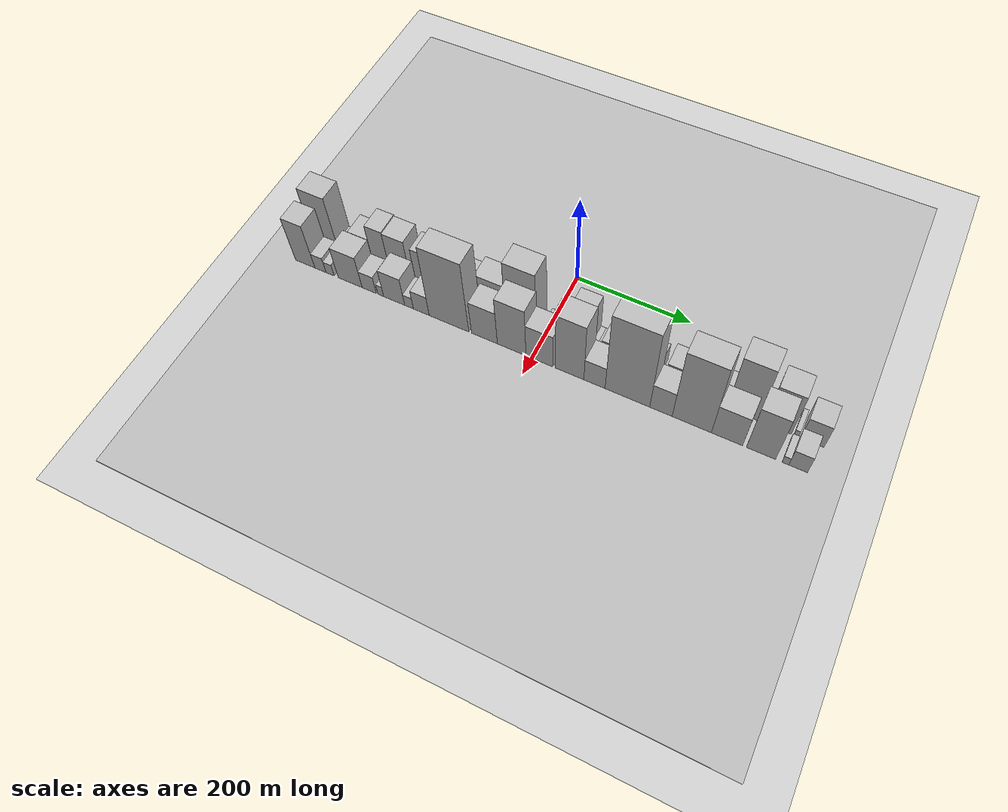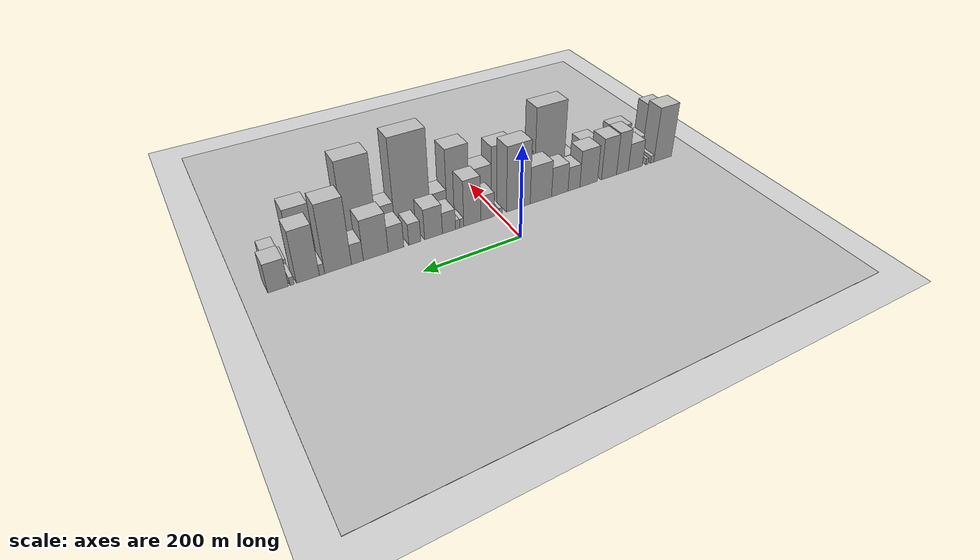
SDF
<sdf version="1.6">
 <world name="default">
  <include><name>ground_plane_1</name><uri>model://HANNAS_ground_plane</uri></include>
  <include>
   <name>ground_plane_2</name>
   <uri>model://HANNAS_ground_plane</uri>
   <pose>100 0 0  0 0 0</pose>
  </include>
  <model name="building_1">
   <static>1</static>
   <pose>100.0000 -410.3281 0 0.000000 0.000000 0.000000</pose>
   <link name="link">
    <pose>0 0 66.00 0 0 0</pose>
    <collision name="collision"><geometry><box><size>40.0000 49.3439 132.0000</size></box></geometry></collision>
    <visual name="visual">
     <cast_shadows>0</cast_shadows>
     <geometry><box><size>40.0000 49.3439 132.0000</size></box></geometry>
     <material>
      <script>
       <uri>model://HANNAS_wall/materials/scripts</uri>
       <uri>model://HANNAS_wall/materials/textures</uri>
       <name>vrc/HANNAS_wall</name>
      </script>
     </material>
    </visual>
   </link>
  </model>
  <model name="building_2">
   <static>1</static>
   <pose>100.0000 -381.3302 0 0.000000 0.000000 0.000000</pose>
   <link name="link">
    <pose>0 0 9.00 0 0 0</pose>
    <collision name="collision"><geometry><box><size>40.0000 8.6517 18.0000</size></box></geometry></collision>
    <visual name="visual">
     <cast_shadows>0</cast_shadows>
     <geometry><box><size>40.0000 8.6517 18.0000</size></box></geometry>
     <material>
      <script>
       <uri>model://HANNAS_wall/materials/scripts</uri>
       <uri>model://HANNAS_wall/materials/textures</uri>
       <name>vrc/HANNAS_wall</name>
      </script>
     </material>
    </visual>
   </link>
  </model>
  <model name="building_3">
   <static>1</static>
   <pose>100.0000 -367.7380 0 0.000000 0.000000 0.000000</pose>
   <link name="link">
    <pose>0 0 7.50 0 0 0</pose>
    <collision name="collision"><geometry><box><size>40.0000 6.5327 15.0000</size></box></geometry></collision>
    <visual name="visual">
     <cast_shadows>0</cast_shadows>
     <geometry><box><size>40.0000 6.5327 15.0000</size></box></geometry>
     <material>
      <script>
       <uri>model://HANNAS_wall/materials/scripts</uri>
       <uri>model://HANNAS_wall/materials/textures</uri>
       <name>vrc/HANNAS_wall</name>
      </script>
     </material>
    </visual>
   </link>
  </model>
  <model name="building_4">
   <static>1</static>
   <pose>100.0000 -335.5844 0 0.000000 0.000000 0.000000</pose>
   <link name="link">
    <pose>0 0 33.00 0 0 0</pose>
    <collision name="collision"><geometry><box><size>40.0000 37.7747 66.0000</size></box></geometry></collision>
    <visual name="visual">
     <cast_shadows>0</cast_shadows>
     <geometry><box><size>40.0000 37.7747 66.0000</size></box></geometry>
     <material>
      <script>
       <uri>model://HANNAS_wall/materials/scripts</uri>
       <uri>model://HANNAS_wall/materials/textures</uri>
       <name>vrc/HANNAS_wall</name>
      </script>
     </material>
    </visual>
   </link>
  </model>
  <model name="building_5">
   <static>1</static>
   <pose>100.0000 -301.1579 0 0.000000 0.000000 0.000000</pose>
   <link name="link">
    <pose>0 0 51.00 0 0 0</pose>
    <collision name="collision"><geometry><box><size>40.0000 31.0781 102.0000</size></box></geometry></collision>
    <visual name="visual">
     <cast_shadows>0</cast_shadows>
     <geometry><box><size>40.0000 31.0781 102.0000</size></box></geometry>
     <material>
      <script>
       <uri>model://HANNAS_wall/materials/scripts</uri>
       <uri>model://HANNAS_wall/materials/textures</uri>
       <name>vrc/HANNAS_wall</name>
      </script>
     </material>
    </visual>
   </link>
  </model>
  <model name="building_6">
   <static>1</static>
   <pose>100.0000 -266.0921 0 0.000000 0.000000 0.000000</pose>
   <link name="link">
    <pose>0 0 49.50 0 0 0</pose>
    <collision name="collision"><geometry><box><size>40.0000 39.0536 99.0000</size></box></geometry></collision>
    <visual name="visual">
     <cast_shadows>0</cast_shadows>
     <geometry><box><size>40.0000 39.0536 99.0000</size></box></geometry>
     <material>
      <script>
       <uri>model://HANNAS_wall/materials/scripts</uri>
       <uri>model://HANNAS_wall/materials/textures</uri>
       <name>vrc/HANNAS_wall</name>
      </script>
     </material>
    </visual>
   </link>
  </model>
  <model name="building_7">
   <static>1</static>
   <pose>100.0000 -214.1146 0 0.000000 0.000000 0.000000</pose>
   <link name="link">
    <pose>0 0 43.50 0 0 0</pose>
    <collision name="collision"><geometry><box><size>40.0000 44.9013 87.0000</size></box></geometry></collision>
    <visual name="visual">
     <cast_shadows>0</cast_shadows>
     <geometry><box><size>40.0000 44.9013 87.0000</size></box></geometry>
     <material>
      <script>
       <uri>model://HANNAS_wall/materials/scripts</uri>
       <uri>model://HANNAS_wall/materials/textures</uri>
       <name>vrc/HANNAS_wall</name>
      </script>
     </material>
    </visual>
   </link>
  </model>
  <model name="building_8">
   <static>1</static>
   <pose>100.0000 -176.9856 0 0.000000 0.000000 0.000000</pose>
   <link name="link">
    <pose>0 0 28.50 0 0 0</pose>
    <collision name="collision"><geometry><box><size>40.0000 29.3566 57.0000</size></box></geometry></collision>
    <visual name="visual">
     <cast_shadows>0</cast_shadows>
     <geometry><box><size>40.0000 29.3566 57.0000</size></box></geometry>
     <material>
      <script>
       <uri>model://HANNAS_wall/materials/scripts</uri>
       <uri>model://HANNAS_wall/materials/textures</uri>
       <name>vrc/HANNAS_wall</name>
      </script>
     </material>
    </visual>
   </link>
  </model>
  <model name="building_9">
   <static>1</static>
   <pose>100.0000 -142.3711 0 0.000000 0.000000 0.000000</pose>
   <link name="link">
    <pose>0 0 34.50 0 0 0</pose>
    <collision name="collision"><geometry><box><size>40.0000 39.8723 69.0000</size></box></geometry></collision>
    <visual name="visual">
     <cast_shadows>0</cast_shadows>
     <geometry><box><size>40.0000 39.8723 69.0000</size></box></geometry>
     <material>
      <script>
       <uri>model://HANNAS_wall/materials/scripts</uri>
       <uri>model://HANNAS_wall/materials/textures</uri>
       <name>vrc/HANNAS_wall</name>
      </script>
     </material>
    </visual>
   </link>
  </model>
  <model name="building_10">
   <static>1</static>
   <pose>100.0000 -96.9584 0 0.000000 0.000000 0.000000</pose>
   <link name="link">
    <pose>0 0 43.50 0 0 0</pose>
    <collision name="collision"><geometry><box><size>40.0000 50.9531 87.0000</size></box></geometry></collision>
    <visual name="visual">
     <cast_shadows>0</cast_shadows>
     <geometry><box><size>40.0000 50.9531 87.0000</size></box></geometry>
     <material>
      <script>
       <uri>model://HANNAS_wall/materials/scripts</uri>
       <uri>model://HANNAS_wall/materials/textures</uri>
       <name>vrc/HANNAS_wall</name>
      </script>
     </material>
    </visual>
   </link>
  </model>
  <model name="building_11">
   <static>1</static>
   <pose>100.0000 -44.1726 0 0.000000 0.000000 0.000000</pose>
   <link name="link">
    <pose>0 0 75.00 0 0 0</pose>
    <collision name="collision"><geometry><box><size>40.0000 54.6186 150.0000</size></box></geometry></collision>
    <visual name="visual">
     <cast_shadows>0</cast_shadows>
     <geometry><box><size>40.0000 54.6186 150.0000</size></box></geometry>
     <material>
      <script>
       <uri>model://HANNAS_wall/materials/scripts</uri>
       <uri>model://HANNAS_wall/materials/textures</uri>
       <name>vrc/HANNAS_wall</name>
      </script>
     </material>
    </visual>
   </link>
  </model>
  <model name="building_12">
   <static>1</static>
   <pose>100.0000 -3.2492 0 0.000000 0.000000 0.000000</pose>
   <link name="link">
    <pose>0 0 7.50 0 0 0</pose>
    <collision name="collision"><geometry><box><size>40.0000 7.2283 15.0000</size></box></geometry></collision>
    <visual name="visual">
     <cast_shadows>0</cast_shadows>
     <geometry><box><size>40.0000 7.2283 15.0000</size></box></geometry>
     <material>
      <script>
       <uri>model://HANNAS_wall/materials/scripts</uri>
       <uri>model://HANNAS_wall/materials/textures</uri>
       <name>vrc/HANNAS_wall</name>
      </script>
     </material>
    </visual>
   </link>
  </model>
  <model name="building_13">
   <static>1</static>
   <pose>100.0000 25.6889 0 0.000000 0.000000 0.000000</pose>
   <link name="link">
    <pose>0 0 28.50 0 0 0</pose>
    <collision name="collision"><geometry><box><size>40.0000 30.6479 57.0000</size></box></geometry></collision>
    <visual name="visual">
     <cast_shadows>0</cast_shadows>
     <geometry><box><size>40.0000 30.6479 57.0000</size></box></geometry>
     <material>
      <script>
       <uri>model://HANNAS_wall/materials/scripts</uri>
       <uri>model://HANNAS_wall/materials/textures</uri>
       <name>vrc/HANNAS_wall</name>
      </script>
     </material>
    </visual>
   </link>
  </model>
  <model name="building_14">
   <static>1</static>
   <pose>100.0000 59.5230 0 0.000000 0.000000 0.000000</pose>
   <link name="link">
    <pose>0 0 52.50 0 0 0</pose>
    <collision name="collision"><geometry><box><size>40.0000 37.0203 105.0000</size></box></geometry></collision>
    <visual name="visual">
     <cast_shadows>0</cast_shadows>
     <geometry><box><size>40.0000 37.0203 105.0000</size></box></geometry>
     <material>
      <script>
       <uri>model://HANNAS_wall/materials/scripts</uri>
       <uri>model://HANNAS_wall/materials/textures</uri>
       <name>vrc/HANNAS_wall</name>
      </script>
     </material>
    </visual>
   </link>
  </model>
  <model name="building_15">
   <static>1</static>
   <pose>100.0000 82.3738 0 0.000000 0.000000 0.000000</pose>
   <link name="link">
    <pose>0 0 10.50 0 0 0</pose>
    <collision name="collision"><geometry><box><size>40.0000 8.6813 21.0000</size></box></geometry></collision>
    <visual name="visual">
     <cast_shadows>0</cast_shadows>
     <geometry><box><size>40.0000 8.6813 21.0000</size></box></geometry>
     <material>
      <script>
       <uri>model://HANNAS_wall/materials/scripts</uri>
       <uri>model://HANNAS_wall/materials/textures</uri>
       <name>vrc/HANNAS_wall</name>
      </script>
     </material>
    </visual>
   </link>
  </model>
  <model name="building_16">
   <static>1</static>
   <pose>100.0000 91.1014 0 0.000000 0.000000 0.000000</pose>
   <link name="link">
    <pose>0 0 10.50 0 0 0</pose>
    <collision name="collision"><geometry><box><size>40.0000 8.7740 21.0000</size></box></geometry></collision>
    <visual name="visual">
     <cast_shadows>0</cast_shadows>
     <geometry><box><size>40.0000 8.7740 21.0000</size></box></geometry>
     <material>
      <script>
       <uri>model://HANNAS_wall/materials/scripts</uri>
       <uri>model://HANNAS_wall/materials/textures</uri>
       <name>vrc/HANNAS_wall</name>
      </script>
     </material>
    </visual>
   </link>
  </model>
  <model name="building_17">
   <static>1</static>
   <pose>100.0000 109.5285 0 0.000000 0.000000 0.000000</pose>
   <link name="link">
    <pose>0 0 24.00 0 0 0</pose>
    <collision name="collision"><geometry><box><size>40.0000 28.0802 48.0000</size></box></geometry></collision>
    <visual name="visual">
     <cast_shadows>0</cast_shadows>
     <geometry><box><size>40.0000 28.0802 48.0000</size></box></geometry>
     <material>
      <script>
       <uri>model://HANNAS_wall/materials/scripts</uri>
       <uri>model://HANNAS_wall/materials/textures</uri>
       <name>vrc/HANNAS_wall</name>
      </script>
     </material>
    </visual>
   </link>
  </model>
  <model name="building_18">
   <static>1</static>
   <pose>100.0000 142.0083 0 0.000000 0.000000 0.000000</pose>
   <link name="link">
    <pose>0 0 34.50 0 0 0</pose>
    <collision name="collision"><geometry><box><size>40.0000 36.8794 69.0000</size></box></geometry></collision>
    <visual name="visual">
     <cast_shadows>0</cast_shadows>
     <geometry><box><size>40.0000 36.8794 69.0000</size></box></geometry>
     <material>
      <script>
       <uri>model://HANNAS_wall/materials/scripts</uri>
       <uri>model://HANNAS_wall/materials/textures</uri>
       <name>vrc/HANNAS_wall</name>
      </script>
     </material>
    </visual>
   </link>
  </model>
  <model name="building_19">
   <static>1</static>
   <pose>100.0000 180.6251 0 0.000000 0.000000 0.000000</pose>
   <link name="link">
    <pose>0 0 24.00 0 0 0</pose>
    <collision name="collision"><geometry><box><size>40.0000 24.3541 48.0000</size></box></geometry></collision>
    <visual name="visual">
     <cast_shadows>0</cast_shadows>
     <geometry><box><size>40.0000 24.3541 48.0000</size></box></geometry>
     <material>
      <script>
       <uri>model://HANNAS_wall/materials/scripts</uri>
       <uri>model://HANNAS_wall/materials/textures</uri>
       <name>vrc/HANNAS_wall</name>
      </script>
     </material>
    </visual>
   </link>
  </model>
  <model name="building_20">
   <static>1</static>
   <pose>100.0000 218.4038 0 0.000000 0.000000 0.000000</pose>
   <link name="link">
    <pose>0 0 28.50 0 0 0</pose>
    <collision name="collision"><geometry><box><size>40.0000 31.2033 57.0000</size></box></geometry></collision>
    <visual name="visual">
     <cast_shadows>0</cast_shadows>
     <geometry><box><size>40.0000 31.2033 57.0000</size></box></geometry>
     <material>
      <script>
       <uri>model://HANNAS_wall/materials/scripts</uri>
       <uri>model://HANNAS_wall/materials/textures</uri>
       <name>vrc/HANNAS_wall</name>
      </script>
     </material>
    </visual>
   </link>
  </model>
  <model name="building_21">
   <static>1</static>
   <pose>100.0000 258.2005 0 0.000000 0.000000 0.000000</pose>
   <link name="link">
    <pose>0 0 45.00 0 0 0</pose>
    <collision name="collision"><geometry><box><size>40.0000 48.3902 90.0000</size></box></geometry></collision>
    <visual name="visual">
     <cast_shadows>0</cast_shadows>
     <geometry><box><size>40.0000 48.3902 90.0000</size></box></geometry>
     <material>
      <script>
       <uri>model://HANNAS_wall/materials/scripts</uri>
       <uri>model://HANNAS_wall/materials/textures</uri>
       <name>vrc/HANNAS_wall</name>
      </script>
     </material>
    </visual>
   </link>
  </model>
  <model name="building_22">
   <static>1</static>
   <pose>100.0000 293.7249 0 0.000000 0.000000 0.000000</pose>
   <link name="link">
    <pose>0 0 22.50 0 0 0</pose>
    <collision name="collision"><geometry><box><size>40.0000 22.6585 45.0000</size></box></geometry></collision>
    <visual name="visual">
     <cast_shadows>0</cast_shadows>
     <geometry><box><size>40.0000 22.6585 45.0000</size></box></geometry>
     <material>
      <script>
       <uri>model://HANNAS_wall/materials/scripts</uri>
       <uri>model://HANNAS_wall/materials/textures</uri>
       <name>vrc/HANNAS_wall</name>
      </script>
     </material>
    </visual>
   </link>
  </model>
  <model name="building_23">
   <static>1</static>
   <pose>100.0000 329.9980 0 0.000000 0.000000 0.000000</pose>
   <link name="link">
    <pose>0 0 75.00 0 0 0</pose>
    <collision name="collision"><geometry><box><size>40.0000 49.8877 150.0000</size></box></geometry></collision>
    <visual name="visual">
     <cast_shadows>0</cast_shadows>
     <geometry><box><size>40.0000 49.8877 150.0000</size></box></geometry>
     <material>
      <script>
       <uri>model://HANNAS_wall/materials/scripts</uri>
       <uri>model://HANNAS_wall/materials/textures</uri>
       <name>vrc/HANNAS_wall</name>
      </script>
     </material>
    </visual>
   </link>
  </model>
  <model name="building_24">
   <static>1</static>
   <pose>100.0000 359.8049 0 0.000000 0.000000 0.000000</pose>
   <link name="link">
    <pose>0 0 12.00 0 0 0</pose>
    <collision name="collision"><geometry><box><size>40.0000 9.7261 24.0000</size></box></geometry></collision>
    <visual name="visual">
     <cast_shadows>0</cast_shadows>
     <geometry><box><size>40.0000 9.7261 24.0000</size></box></geometry>
     <material>
      <script>
       <uri>model://HANNAS_wall/materials/scripts</uri>
       <uri>model://HANNAS_wall/materials/textures</uri>
       <name>vrc/HANNAS_wall</name>
      </script>
     </material>
    </visual>
   </link>
  </model>
  <model name="building_25">
   <static>1</static>
   <pose>100.0000 385.3945 0 0.000000 0.000000 0.000000</pose>
   <link name="link">
    <pose>0 0 57.00 0 0 0</pose>
    <collision name="collision"><geometry><box><size>40.0000 41.4531 114.0000</size></box></geometry></collision>
    <visual name="visual">
     <cast_shadows>0</cast_shadows>
     <geometry><box><size>40.0000 41.4531 114.0000</size></box></geometry>
     <material>
      <script>
       <uri>model://HANNAS_wall/materials/scripts</uri>
       <uri>model://HANNAS_wall/materials/textures</uri>
       <name>vrc/HANNAS_wall</name>
      </script>
     </material>
    </visual>
   </link>
  </model>
  <model name="building_26">
   <static>1</static>
   <pose>100.0000 413.7941 0 0.000000 0.000000 0.000000</pose>
   <link name="link">
    <pose>0 0 9.00 0 0 0</pose>
    <collision name="collision"><geometry><box><size>40.0000 7.3461 18.0000</size></box></geometry></collision>
    <visual name="visual">
     <cast_shadows>0</cast_shadows>
     <geometry><box><size>40.0000 7.3461 18.0000</size></box></geometry>
     <material>
      <script>
       <uri>model://HANNAS_wall/materials/scripts</uri>
       <uri>model://HANNAS_wall/materials/textures</uri>
       <name>vrc/HANNAS_wall</name>
      </script>
     </material>
    </visual>
   </link>
  </model>
  <model name="building_27">
   <static>1</static>
   <pose>100.0000 438.3767 0 0.000000 0.000000 0.000000</pose>
   <link name="link">
    <pose>0 0 31.50 0 0 0</pose>
    <collision name="collision"><geometry><box><size>40.0000 35.8192 63.0000</size></box></geometry></collision>
    <visual name="visual">
     <cast_shadows>0</cast_shadows>
     <geometry><box><size>40.0000 35.8192 63.0000</size></box></geometry>
     <material>
      <script>
       <uri>model://HANNAS_wall/materials/scripts</uri>
       <uri>model://HANNAS_wall/materials/textures</uri>
       <name>vrc/HANNAS_wall</name>
      </script>
     </material>
    </visual>
   </link>
  </model>
  <model name="building_28">
   <static>1</static>
   <pose>149.0000 -418.9208 0 0.000000 0.000000 0.000000</pose>
   <link name="link">
    <pose>0 0 55.50 0 0 0</pose>
    <collision name="collision"><geometry><box><size>40.0000 38.1585 111.0000</size></box></geometry></collision>
    <visual name="visual">
     <cast_shadows>0</cast_shadows>
     <geometry><box><size>40.0000 38.1585 111.0000</size></box></geometry>
     <material>
      <script>
       <uri>model://HANNAS_wall/materials/scripts</uri>
       <uri>model://HANNAS_wall/materials/textures</uri>
       <name>vrc/HANNAS_wall</name>
      </script>
     </material>
    </visual>
   </link>
  </model>
  <model name="building_29">
   <static>1</static>
   <pose>149.0000 -389.0827 0 0.000000 0.000000 0.000000</pose>
   <link name="link">
    <pose>0 0 19.50 0 0 0</pose>
    <collision name="collision"><geometry><box><size>40.0000 21.5177 39.0000</size></box></geometry></collision>
    <visual name="visual">
     <cast_shadows>0</cast_shadows>
     <geometry><box><size>40.0000 21.5177 39.0000</size></box></geometry>
     <material>
      <script>
       <uri>model://HANNAS_wall/materials/scripts</uri>
       <uri>model://HANNAS_wall/materials/textures</uri>
       <name>vrc/HANNAS_wall</name>
      </script>
     </material>
    </visual>
   </link>
  </model>
  <model name="building_30">
   <static>1</static>
   <pose>149.0000 -370.3970 0 0.000000 0.000000 0.000000</pose>
   <link name="link">
    <pose>0 0 15.00 0 0 0</pose>
    <collision name="collision"><geometry><box><size>40.0000 15.8535 30.0000</size></box></geometry></collision>
    <visual name="visual">
     <cast_shadows>0</cast_shadows>
     <geometry><box><size>40.0000 15.8535 30.0000</size></box></geometry>
     <material>
      <script>
       <uri>model://HANNAS_wall/materials/scripts</uri>
       <uri>model://HANNAS_wall/materials/textures</uri>
       <name>vrc/HANNAS_wall</name>
      </script>
     </material>
    </visual>
   </link>
  </model>
  <model name="building_31">
   <static>1</static>
   <pose>149.0000 -331.6045 0 0.000000 0.000000 0.000000</pose>
   <link name="link">
    <pose>0 0 40.50 0 0 0</pose>
    <collision name="collision"><geometry><box><size>40.0000 45.7316 81.0000</size></box></geometry></collision>
    <visual name="visual">
     <cast_shadows>0</cast_shadows>
     <geometry><box><size>40.0000 45.7316 81.0000</size></box></geometry>
     <material>
      <script>
       <uri>model://HANNAS_wall/materials/scripts</uri>
       <uri>model://HANNAS_wall/materials/textures</uri>
       <name>vrc/HANNAS_wall</name>
      </script>
     </material>
    </visual>
   </link>
  </model>
  <model name="building_32">
   <static>1</static>
   <pose>149.0000 -295.3125 0 0.000000 0.000000 0.000000</pose>
   <link name="link">
    <pose>0 0 22.50 0 0 0</pose>
    <collision name="collision"><geometry><box><size>40.0000 26.8524 45.0000</size></box></geometry></collision>
    <visual name="visual">
     <cast_shadows>0</cast_shadows>
     <geometry><box><size>40.0000 26.8524 45.0000</size></box></geometry>
     <material>
      <script>
       <uri>model://HANNAS_wall/materials/scripts</uri>
       <uri>model://HANNAS_wall/materials/textures</uri>
       <name>vrc/HANNAS_wall</name>
      </script>
     </material>
    </visual>
   </link>
  </model>
  <model name="building_33">
   <static>1</static>
   <pose>149.0000 -273.4589 0 0.000000 0.000000 0.000000</pose>
   <link name="link">
    <pose>0 0 13.50 0 0 0</pose>
    <collision name="collision"><geometry><box><size>40.0000 10.8548 27.0000</size></box></geometry></collision>
    <visual name="visual">
     <cast_shadows>0</cast_shadows>
     <geometry><box><size>40.0000 10.8548 27.0000</size></box></geometry>
     <material>
      <script>
       <uri>model://HANNAS_wall/materials/scripts</uri>
       <uri>model://HANNAS_wall/materials/textures</uri>
       <name>vrc/HANNAS_wall</name>
      </script>
     </material>
    </visual>
   </link>
  </model>
  <model name="building_34">
   <static>1</static>
   <pose>149.0000 -248.3620 0 0.000000 0.000000 0.000000</pose>
   <link name="link">
    <pose>0 0 36.00 0 0 0</pose>
    <collision name="collision"><geometry><box><size>40.0000 39.3390 72.0000</size></box></geometry></collision>
    <visual name="visual">
     <cast_shadows>0</cast_shadows>
     <geometry><box><size>40.0000 39.3390 72.0000</size></box></geometry>
     <material>
      <script>
       <uri>model://HANNAS_wall/materials/scripts</uri>
       <uri>model://HANNAS_wall/materials/textures</uri>
       <name>vrc/HANNAS_wall</name>
      </script>
     </material>
    </visual>
   </link>
  </model>
  <model name="building_35">
   <static>1</static>
   <pose>149.0000 -220.6247 0 0.000000 0.000000 0.000000</pose>
   <link name="link">
    <pose>0 0 15.00 0 0 0</pose>
    <collision name="collision"><geometry><box><size>40.0000 16.1356 30.0000</size></box></geometry></collision>
    <visual name="visual">
     <cast_shadows>0</cast_shadows>
     <geometry><box><size>40.0000 16.1356 30.0000</size></box></geometry>
     <material>
      <script>
       <uri>model://HANNAS_wall/materials/scripts</uri>
       <uri>model://HANNAS_wall/materials/textures</uri>
       <name>vrc/HANNAS_wall</name>
      </script>
     </material>
    </visual>
   </link>
  </model>
  <model name="building_36">
   <static>1</static>
   <pose>149.0000 -197.9499 0 0.000000 0.000000 0.000000</pose>
   <link name="link">
    <pose>0 0 25.50 0 0 0</pose>
    <collision name="collision"><geometry><box><size>40.0000 29.2139 51.0000</size></box></geometry></collision>
    <visual name="visual">
     <cast_shadows>0</cast_shadows>
     <geometry><box><size>40.0000 29.2139 51.0000</size></box></geometry>
     <material>
      <script>
       <uri>model://HANNAS_wall/materials/scripts</uri>
       <uri>model://HANNAS_wall/materials/textures</uri>
       <name>vrc/HANNAS_wall</name>
      </script>
     </material>
    </visual>
   </link>
  </model>
  <model name="building_37">
   <static>1</static>
   <pose>149.0000 -147.4366 0 0.000000 0.000000 0.000000</pose>
   <link name="link">
    <pose>0 0 91.50 0 0 0</pose>
    <collision name="collision"><geometry><box><size>40.0000 71.8128 183.0000</size></box></geometry></collision>
    <visual name="visual">
     <cast_shadows>0</cast_shadows>
     <geometry><box><size>40.0000 71.8128 183.0000</size></box></geometry>
     <material>
      <script>
       <uri>model://HANNAS_wall/materials/scripts</uri>
       <uri>model://HANNAS_wall/materials/textures</uri>
       <name>vrc/HANNAS_wall</name>
      </script>
     </material>
    </visual>
   </link>
  </model>
  <model name="building_38">
   <static>1</static>
   <pose>149.0000 -83.5392 0 0.000000 0.000000 0.000000</pose>
   <link name="link">
    <pose>0 0 43.50 0 0 0</pose>
    <collision name="collision"><geometry><box><size>40.0000 45.9820 87.0000</size></box></geometry></collision>
    <visual name="visual">
     <cast_shadows>0</cast_shadows>
     <geometry><box><size>40.0000 45.9820 87.0000</size></box></geometry>
     <material>
      <script>
       <uri>model://HANNAS_wall/materials/scripts</uri>
       <uri>model://HANNAS_wall/materials/textures</uri>
       <name>vrc/HANNAS_wall</name>
      </script>
     </material>
    </visual>
   </link>
  </model>
  <model name="building_39">
   <static>1</static>
   <pose>149.0000 -35.3843 0 0.000000 0.000000 0.000000</pose>
   <link name="link">
    <pose>0 0 63.00 0 0 0</pose>
    <collision name="collision"><geometry><box><size>40.0000 50.3278 126.0000</size></box></geometry></collision>
    <visual name="visual">
     <cast_shadows>0</cast_shadows>
     <geometry><box><size>40.0000 50.3278 126.0000</size></box></geometry>
     <material>
      <script>
       <uri>model://HANNAS_wall/materials/scripts</uri>
       <uri>model://HANNAS_wall/materials/textures</uri>
       <name>vrc/HANNAS_wall</name>
      </script>
     </material>
    </visual>
   </link>
  </model>
  <model name="building_40">
   <static>1</static>
   <pose>149.0000 13.1215 0 0.000000 0.000000 0.000000</pose>
   <link name="link">
    <pose>0 0 43.50 0 0 0</pose>
    <collision name="collision"><geometry><box><size>40.0000 46.6838 87.0000</size></box></geometry></collision>
    <visual name="visual">
     <cast_shadows>0</cast_shadows>
     <geometry><box><size>40.0000 46.6838 87.0000</size></box></geometry>
     <material>
      <script>
       <uri>model://HANNAS_wall/materials/scripts</uri>
       <uri>model://HANNAS_wall/materials/textures</uri>
       <name>vrc/HANNAS_wall</name>
      </script>
     </material>
    </visual>
   </link>
  </model>
  <model name="building_41">
   <static>1</static>
   <pose>149.0000 64.8093 0 0.000000 0.000000 0.000000</pose>
   <link name="link">
    <pose>0 0 75.00 0 0 0</pose>
    <collision name="collision"><geometry><box><size>40.0000 48.6917 150.0000</size></box></geometry></collision>
    <visual name="visual">
     <cast_shadows>0</cast_shadows>
     <geometry><box><size>40.0000 48.6917 150.0000</size></box></geometry>
     <material>
      <script>
       <uri>model://HANNAS_wall/materials/scripts</uri>
       <uri>model://HANNAS_wall/materials/textures</uri>
       <name>vrc/HANNAS_wall</name>
      </script>
     </material>
    </visual>
   </link>
  </model>
  <model name="building_42">
   <static>1</static>
   <pose>149.0000 106.9191 0 0.000000 0.000000 0.000000</pose>
   <link name="link">
    <pose>0 0 30.00 0 0 0</pose>
    <collision name="collision"><geometry><box><size>40.0000 35.5280 60.0000</size></box></geometry></collision>
    <visual name="visual">
     <cast_shadows>0</cast_shadows>
     <geometry><box><size>40.0000 35.5280 60.0000</size></box></geometry>
     <material>
      <script>
       <uri>model://HANNAS_wall/materials/scripts</uri>
       <uri>model://HANNAS_wall/materials/textures</uri>
       <name>vrc/HANNAS_wall</name>
      </script>
     </material>
    </visual>
   </link>
  </model>
  <model name="building_43">
   <static>1</static>
   <pose>149.0000 161.6968 0 0.000000 0.000000 0.000000</pose>
   <link name="link">
    <pose>0 0 103.50 0 0 0</pose>
    <collision name="collision"><geometry><box><size>40.0000 74.0273 207.0000</size></box></geometry></collision>
    <visual name="visual">
     <cast_shadows>0</cast_shadows>
     <geometry><box><size>40.0000 74.0273 207.0000</size></box></geometry>
     <material>
      <script>
       <uri>model://HANNAS_wall/materials/scripts</uri>
       <uri>model://HANNAS_wall/materials/textures</uri>
       <name>vrc/HANNAS_wall</name>
      </script>
     </material>
    </visual>
   </link>
  </model>
  <model name="building_44">
   <static>1</static>
   <pose>149.0000 216.9147 0 0.000000 0.000000 0.000000</pose>
   <link name="link">
    <pose>0 0 34.50 0 0 0</pose>
    <collision name="collision"><geometry><box><size>40.0000 36.4086 69.0000</size></box></geometry></collision>
    <visual name="visual">
     <cast_shadows>0</cast_shadows>
     <geometry><box><size>40.0000 36.4086 69.0000</size></box></geometry>
     <material>
      <script>
       <uri>model://HANNAS_wall/materials/scripts</uri>
       <uri>model://HANNAS_wall/materials/textures</uri>
       <name>vrc/HANNAS_wall</name>
      </script>
     </material>
    </visual>
   </link>
  </model>
  <model name="building_45">
   <static>1</static>
   <pose>149.0000 266.5060 0 0.000000 0.000000 0.000000</pose>
   <link name="link">
    <pose>0 0 94.50 0 0 0</pose>
    <collision name="collision"><geometry><box><size>40.0000 62.7739 189.0000</size></box></geometry></collision>
    <visual name="visual">
     <cast_shadows>0</cast_shadows>
     <geometry><box><size>40.0000 62.7739 189.0000</size></box></geometry>
     <material>
      <script>
       <uri>model://HANNAS_wall/materials/scripts</uri>
       <uri>model://HANNAS_wall/materials/textures</uri>
       <name>vrc/HANNAS_wall</name>
      </script>
     </material>
    </visual>
   </link>
  </model>
  <model name="building_46">
   <static>1</static>
   <pose>149.0000 322.3967 0 0.000000 0.000000 0.000000</pose>
   <link name="link">
    <pose>0 0 42.00 0 0 0</pose>
    <collision name="collision"><geometry><box><size>40.0000 49.0075 84.0000</size></box></geometry></collision>
    <visual name="visual">
     <cast_shadows>0</cast_shadows>
     <geometry><box><size>40.0000 49.0075 84.0000</size></box></geometry>
     <material>
      <script>
       <uri>model://HANNAS_wall/materials/scripts</uri>
       <uri>model://HANNAS_wall/materials/textures</uri>
       <name>vrc/HANNAS_wall</name>
      </script>
     </material>
    </visual>
   </link>
  </model>
  <model name="building_47">
   <static>1</static>
   <pose>149.0000 375.4929 0 0.000000 0.000000 0.000000</pose>
   <link name="link">
    <pose>0 0 61.50 0 0 0</pose>
    <collision name="collision"><geometry><box><size>40.0000 45.1849 123.0000</size></box></geometry></collision>
    <visual name="visual">
     <cast_shadows>0</cast_shadows>
     <geometry><box><size>40.0000 45.1849 123.0000</size></box></geometry>
     <material>
      <script>
       <uri>model://HANNAS_wall/materials/scripts</uri>
       <uri>model://HANNAS_wall/materials/textures</uri>
       <name>vrc/HANNAS_wall</name>
      </script>
     </material>
    </visual>
   </link>
  </model>
  <model name="building_48">
   <static>1</static>
   <pose>149.0000 413.1783 0 0.000000 0.000000 0.000000</pose>
   <link name="link">
    <pose>0 0 10.50 0 0 0</pose>
    <collision name="collision"><geometry><box><size>40.0000 10.1859 21.0000</size></box></geometry></collision>
    <visual name="visual">
     <cast_shadows>0</cast_shadows>
     <geometry><box><size>40.0000 10.1859 21.0000</size></box></geometry>
     <material>
      <script>
       <uri>model://HANNAS_wall/materials/scripts</uri>
       <uri>model://HANNAS_wall/materials/textures</uri>
       <name>vrc/HANNAS_wall</name>
      </script>
     </material>
    </visual>
   </link>
  </model>
  <model name="building_49">
   <static>1</static>
   <pose>149.0000 432.3842 0 0.000000 0.000000 0.000000</pose>
   <link name="link">
    <pose>0 0 24.00 0 0 0</pose>
    <collision name="collision"><geometry><box><size>40.0000 28.2261 48.0000</size></box></geometry></collision>
    <visual name="visual">
     <cast_shadows>0</cast_shadows>
     <geometry><box><size>40.0000 28.2261 48.0000</size></box></geometry>
     <material>
      <script>
       <uri>model://HANNAS_wall/materials/scripts</uri>
       <uri>model://HANNAS_wall/materials/textures</uri>
       <name>vrc/HANNAS_wall</name>
      </script>
     </material>
    </visual>
   </link>
  </model>
 </world>
</sdf>
